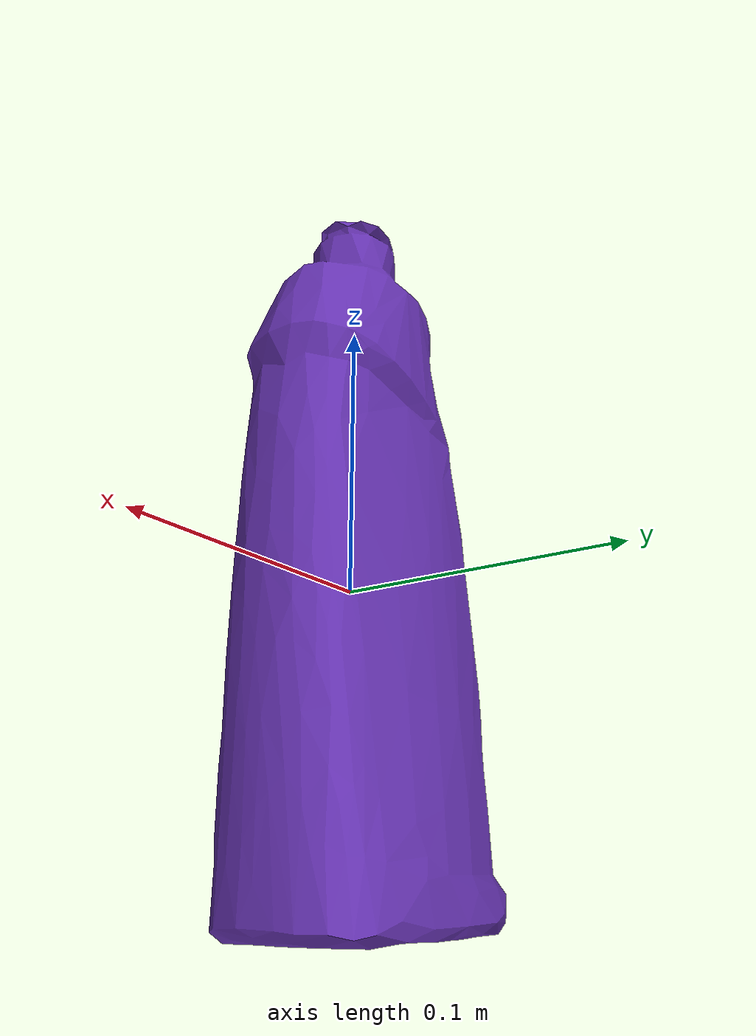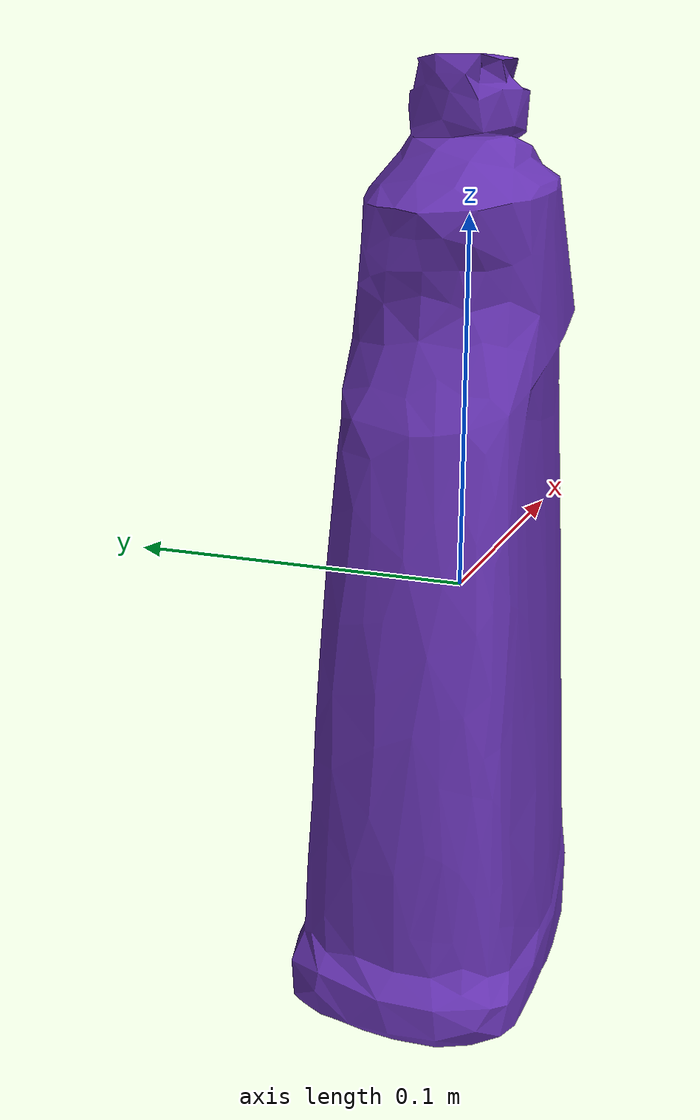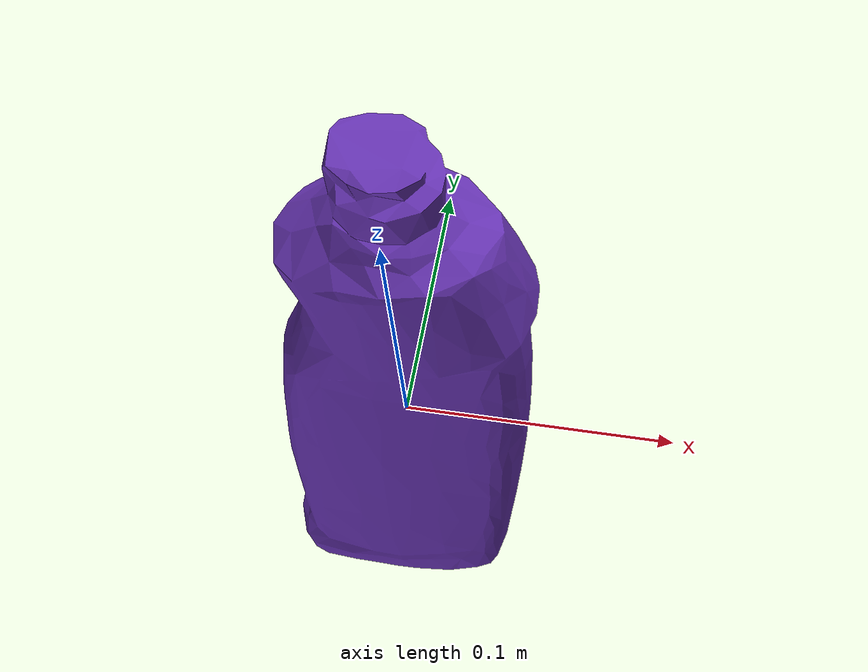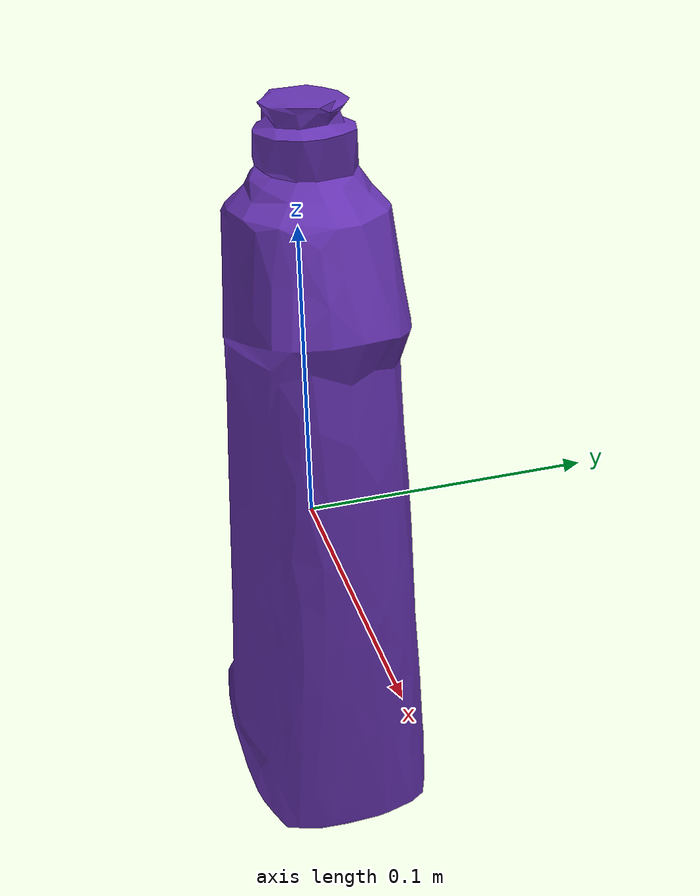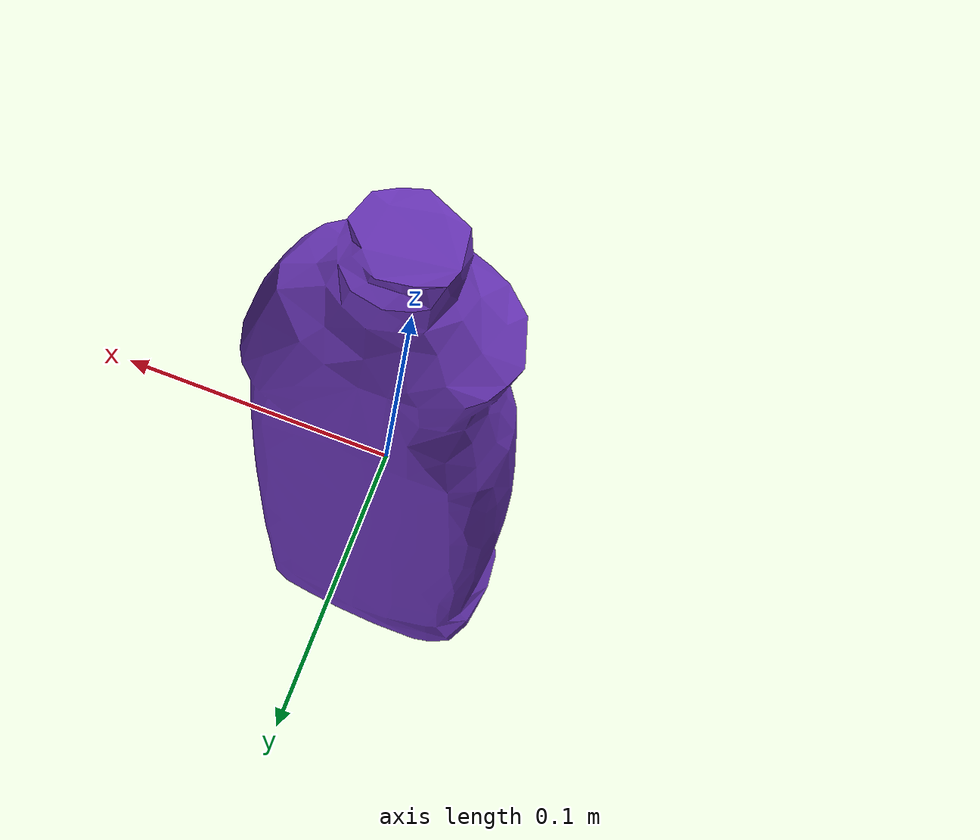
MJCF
<mujoco model="top_watertight_tiny">

  <asset>
    <mesh file="top_watertight_tiny.obj"/>
    <mesh file="top_watertight_tiny_collision_0.obj"/>
    <mesh file="top_watertight_tiny_collision_1.obj"/>
    <mesh file="top_watertight_tiny_collision_2.obj"/>
    <mesh file="top_watertight_tiny_collision_3.obj"/>
  </asset>
  <worldbody>
    <body name="top_watertight_tiny">
      <freejoint/>
      <geom solimp="0.90 0.95 0.001" solref="0.02 1.0" density="100" friction="0.95 0.4 0.3" rgba="0.4 0.2 0.7 1" mesh="top_watertight_tiny" group="2" type="mesh" contype="0" conaffinity="0"/>
      <geom solimp="0.90 0.95 0.001" solref="0.02 1.0" density="100" friction="0.95 0.4 0.3" mesh="top_watertight_tiny_collision_0" rgba="0.5444999071338764 0.12067543503771927 0.4454194846769439 1" group="3" type="mesh"/>
      <geom solimp="0.90 0.95 0.001" solref="0.02 1.0" density="100" friction="0.95 0.4 0.3" mesh="top_watertight_tiny_collision_1" rgba="0.22026084805680268 0.8958925433418384 0.5679688638931772 1" group="3" type="mesh"/>
      <geom solimp="0.90 0.95 0.001" solref="0.02 1.0" density="100" friction="0.95 0.4 0.3" mesh="top_watertight_tiny_collision_2" rgba="0.9622872568750871 0.5486085579842923 0.1703303741141019 1" group="3" type="mesh"/>
      <geom solimp="0.90 0.95 0.001" solref="0.02 1.0" density="100" friction="0.95 0.4 0.3" mesh="top_watertight_tiny_collision_3" rgba="0.004274823134204686 0.57429112543168 0.6760310135511828 1" group="3" type="mesh"/>
    </body>
  </worldbody>
</mujoco>
